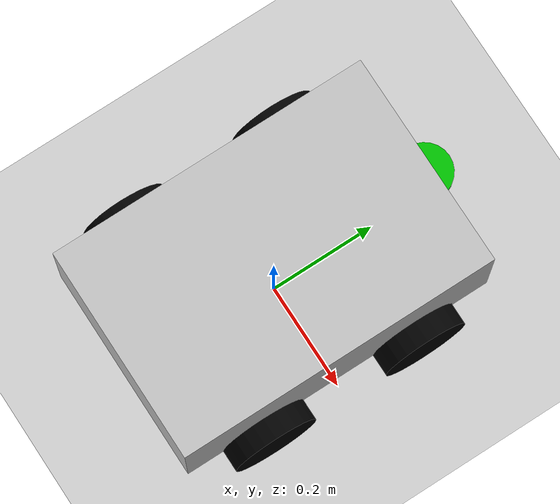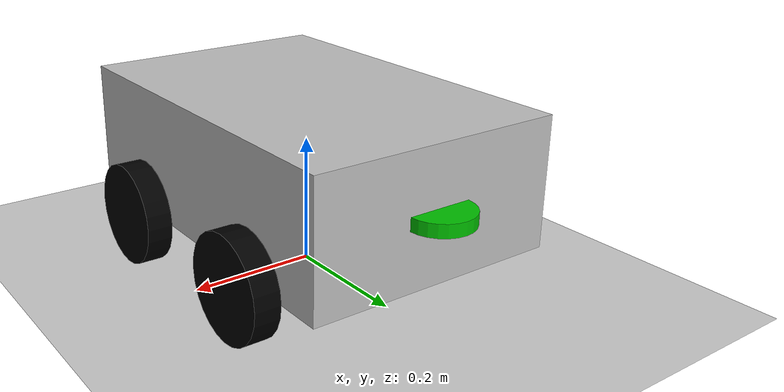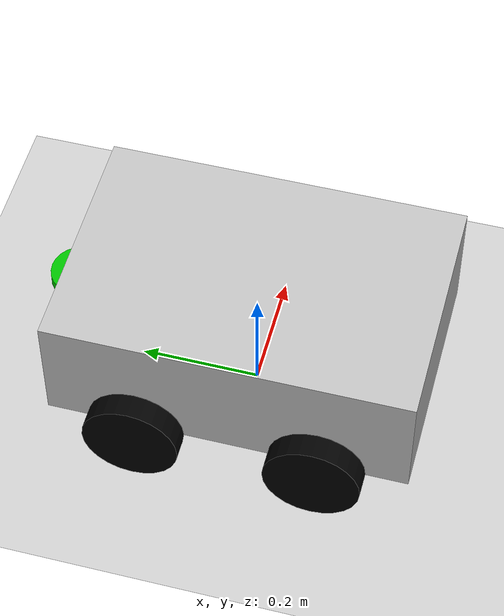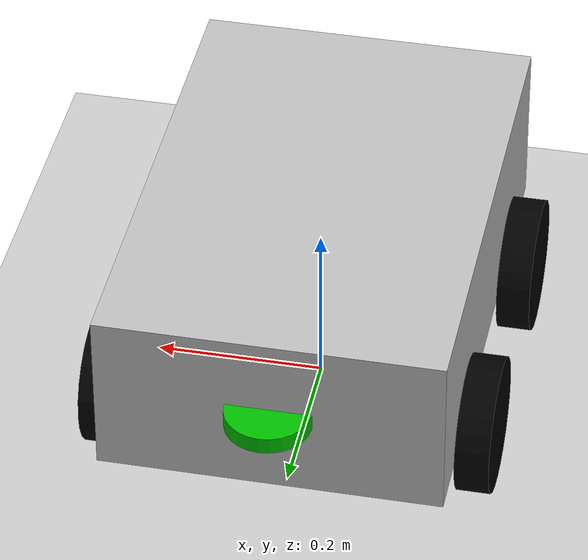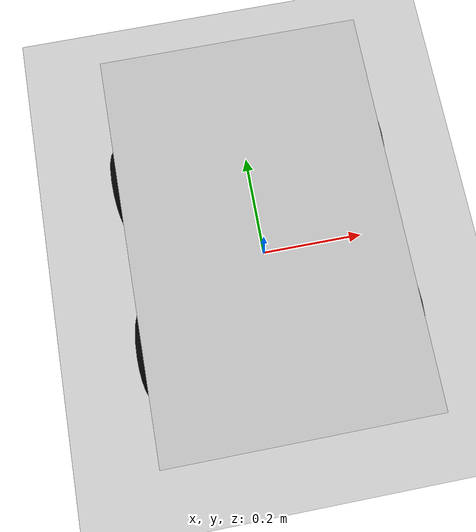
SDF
<sdf version='1.10'>
  <world name='my_world'>
    <physics name='1ms' type='ignored'>
      <max_step_size>0.001</max_step_size>
      <real_time_factor>1</real_time_factor>
      <real_time_update_rate>1000</real_time_update_rate>
    </physics>
    <plugin name='gz::sim::systems::Physics' filename='gz-sim-physics-system'/>
    <plugin name='gz::sim::systems::UserCommands' filename='gz-sim-user-commands-system'/>
    <plugin name='gz::sim::systems::SceneBroadcaster' filename='gz-sim-scene-broadcaster-system'/>
    <plugin name='gz::sim::systems::Physics' filename='gz-sim-physics-system'/>
    <plugin name='gz::sim::systems::UserCommands' filename='gz-sim-user-commands-system'/>
    <plugin name='gz::sim::systems::SceneBroadcaster' filename='gz-sim-scene-broadcaster-system'/>
    <plugin name='gz::sim::systems::Contact' filename='gz-sim-contact-system'/>
    <plugin name='gz::sim::systems::Sensors' filename='gz-sim-sensors-system'>
      <render_engine>ogre2</render_engine>
    </plugin>
    <gravity>0 0 -9.8000000000000007</gravity>
    <magnetic_field>5.5644999999999998e-06 2.2875799999999999e-05 -4.2388400000000002e-05</magnetic_field>
    <atmosphere type='adiabatic'/>
    <scene>
      <ambient>0.400000006 0.400000006 0.400000006 1</ambient>
      <background>0.699999988 0.699999988 0.699999988 1</background>
      <shadows>true</shadows>
    </scene>
    <model name='ground_plane'>
      <static>true</static>
      <link name='link'>
        <collision name='collision'>
          <geometry>
            <plane>
              <normal>0 0 1</normal>
              <size>100 100</size>
            </plane>
          </geometry>
          <surface>
            <friction>
              <ode/>
            </friction>
            <bounce/>
            <contact/>
          </surface>
        </collision>
        <visual name='visual'>
          <geometry>
            <plane>
              <normal>0 0 1</normal>
              <size>100 100</size>
            </plane>
          </geometry>
          <material>
            <ambient>0.800000012 0.800000012 0.800000012 1</ambient>
            <diffuse>0.800000012 0.800000012 0.800000012 1</diffuse>
            <specular>0.800000012 0.800000012 0.800000012 1</specular>
          </material>
        </visual>
        <pose>0 0 0 0 0 0</pose>
        <inertial>
          <pose>0 0 0 0 0 0</pose>
          <mass>1</mass>
          <inertia>
            <ixx>1</ixx>
            <ixy>0</ixy>
            <ixz>0</ixz>
            <iyy>1</iyy>
            <iyz>0</iyz>
            <izz>1</izz>
          </inertia>
        </inertial>
        <enable_wind>false</enable_wind>
      </link>
      <pose>0 0 0 0 0 0</pose>
      <self_collide>false</self_collide>
    </model>
    <model name='my_robot'>
      <link name='base_footprint'>
        <inertial>
          <pose>0 0.011538461538461541 0.17999999999999999 0 0 0</pose>
          <mass>5.2000000000000002</mass>
          <inertia>
            <ixx>0.23410769230769241</ixx>
            <ixy>0</ixy>
            <ixz>0</ixz>
            <iyy>0.10010000000000011</iyy>
            <iyz>0</iyz>
            <izz>0.28425769230769232</izz>
          </inertia>
        </inertial>
        <collision name='base_footprint_fixed_joint_lump__base_link_collision'>
          <pose>0 0 0.17999999999999999 0 0 0</pose>
          <geometry>
            <box>
              <size>0.40000000000000002 0.59999999999999998 0.20000000000000001</size>
            </box>
          </geometry>
          <surface>
            <friction>
              <ode/>
            </friction>
            <bounce/>
            <contact/>
          </surface>
        </collision>
        <collision name='base_footprint_fixed_joint_lump__lidar_collision_1'>
          <pose>0 0.29999999999999999 0.17999999999999999 0 0 0</pose>
          <geometry>
            <cylinder>
              <length>0.02</length>
              <radius>0.050000000000000003</radius>
            </cylinder>
          </geometry>
          <surface>
            <contact>
              <ode/>
            </contact>
            <friction>
              <ode/>
            </friction>
            <bounce/>
          </surface>
        </collision>
        <visual name='base_footprint_fixed_joint_lump__base_link_visual'>
          <pose>0 0 0.17999999999999999 0 0 0</pose>
          <geometry>
            <box>
              <size>0.40000000000000002 0.59999999999999998 0.20000000000000001</size>
            </box>
          </geometry>
          <material>
            <diffuse>0.75000006 0.75000006 0.75000006 1</diffuse>
            <ambient>0.75000006 0.75000006 0.75000006 1</ambient>
          </material>
        </visual>
        <visual name='base_footprint_fixed_joint_lump__lidar_visual_1'>
          <pose>0 0.29999999999999999 0.17999999999999999 0 0 0</pose>
          <geometry>
            <cylinder>
              <length>0.02</length>
              <radius>0.050000000000000003</radius>
            </cylinder>
          </geometry>
          <material>
            <diffuse>0 0.75000006 0 1</diffuse>
            <ambient>0 0.75000006 0 1</ambient>
          </material>
        </visual>
        <sensor name='gpu_lidar' type='gpu_lidar'>
          <pose>0 0.29999999999999999 0.17999999999999999 0 0 0</pose>
          <topic>scan</topic>
          <update_rate>10</update_rate>
          <enable_metrics>false</enable_metrics>
          <lidar>
            <scan>
              <horizontal>
                <samples>720</samples>
                <resolution>1</resolution>
                <min_angle>0</min_angle>
                <max_angle>3.1415926000000001</max_angle>
              </horizontal>
              <vertical>
                <samples>1</samples>
                <min_angle>0</min_angle>
                <max_angle>0</max_angle>
                <resolution>1</resolution>
              </vertical>
            </scan>
            <range>
              <min>0.050000000000000003</min>
              <max>5</max>
              <resolution>0.01</resolution>
            </range>
            <noise>
              <type>gaussian</type>
              <mean>0</mean>
              <stddev>0.01</stddev>
            </noise>
            <visibility_mask>4294967295</visibility_mask>
          </lidar>
        </sensor>
        <pose>0 0 0 0 0 0</pose>
        <enable_wind>false</enable_wind>
      </link>
      <joint name='base_left_back_joint' type='revolute'>
        <pose>0 0 0 0 0 0</pose>
        <parent>base_footprint</parent>
        <child>left_back_wheel</child>
        <axis>
          <xyz>1 0 0</xyz>
          <limit>
            <lower>-inf</lower>
            <upper>inf</upper>
            <effort>inf</effort>
            <velocity>inf</velocity>
            <stiffness>100000000</stiffness>
            <dissipation>1</dissipation>
          </limit>
          <dynamics>
            <spring_reference>0</spring_reference>
            <spring_stiffness>0</spring_stiffness>
            <damping>0</damping>
            <friction>0</friction>
          </dynamics>
        </axis>
      </joint>
      <link name='left_back_wheel'>
        <pose>-0.22 -0.14999999999999999 0.080000000000000016 1.6503657218961687e-11 -8.5065414447009675e-38 3.7615819226243007e-37</pose>
        <inertial>
          <pose>0 0 0 0 0 0</pose>
          <mass>0.5</mass>
          <inertia>
            <ixx>0.0016000000000000001</ixx>
            <ixy>0</ixy>
            <ixz>0</ixz>
            <iyy>0.00086700000000000004</iyy>
            <iyz>0</iyz>
            <izz>0.00086700000000000004</izz>
          </inertia>
        </inertial>
        <collision name='left_back_wheel_collision'>
          <pose>0 0 0 0 1.5707963267948966 0</pose>
          <geometry>
            <cylinder>
              <length>0.040000000000000001</length>
              <radius>0.080000000000000002</radius>
            </cylinder>
          </geometry>
          <surface>
            <friction>
              <ode/>
            </friction>
            <bounce/>
            <contact/>
          </surface>
        </collision>
        <visual name='left_back_wheel_visual'>
          <pose>0 0 0 0 1.5707963267948966 0</pose>
          <geometry>
            <cylinder>
              <length>0.040000000000000001</length>
              <radius>0.080000000000000002</radius>
            </cylinder>
          </geometry>
          <material>
            <diffuse>0 0 0 1</diffuse>
            <ambient>0 0 0 1</ambient>
          </material>
        </visual>
        <enable_wind>false</enable_wind>
      </link>
      <joint name='base_left_front_joint' type='revolute'>
        <pose>0 0 0 0 0 0</pose>
        <parent>base_footprint</parent>
        <child>left_front_wheel</child>
        <axis>
          <xyz>1 0 0</xyz>
          <limit>
            <lower>-inf</lower>
            <upper>inf</upper>
            <effort>inf</effort>
            <velocity>inf</velocity>
            <stiffness>100000000</stiffness>
            <dissipation>1</dissipation>
          </limit>
          <dynamics>
            <spring_reference>0</spring_reference>
            <spring_stiffness>0</spring_stiffness>
            <damping>0</damping>
            <friction>0</friction>
          </dynamics>
        </axis>
      </joint>
      <link name='left_front_wheel'>
        <pose>0.22 -0.14999999999999999 0.080000000000000016 1.6503657226121374e-11 -8.5057959187828509e-38 3.7615819226243011e-37</pose>
        <inertial>
          <pose>0 0 0 0 0 0</pose>
          <mass>0.5</mass>
          <inertia>
            <ixx>0.0016000000000000001</ixx>
            <ixy>0</ixy>
            <ixz>0</ixz>
            <iyy>0.00086700000000000004</iyy>
            <iyz>0</iyz>
            <izz>0.00086700000000000004</izz>
          </inertia>
        </inertial>
        <collision name='left_front_wheel_collision'>
          <pose>0 0 0 0 1.5707963267948966 0</pose>
          <geometry>
            <cylinder>
              <length>0.040000000000000001</length>
              <radius>0.080000000000000002</radius>
            </cylinder>
          </geometry>
          <surface>
            <friction>
              <ode/>
            </friction>
            <bounce/>
            <contact/>
          </surface>
        </collision>
        <visual name='left_front_wheel_visual'>
          <pose>0 0 0 0 1.5707963267948966 0</pose>
          <geometry>
            <cylinder>
              <length>0.040000000000000001</length>
              <radius>0.080000000000000002</radius>
            </cylinder>
          </geometry>
          <material>
            <diffuse>0 0 0 1</diffuse>
            <ambient>0 0 0 1</ambient>
          </material>
        </visual>
        <enable_wind>false</enable_wind>
      </link>
      <joint name='base_right_back_joint' type='revolute'>
        <pose>0 0 0 0 0 0</pose>
        <parent>base_footprint</parent>
        <child>right_back_wheel</child>
        <axis>
          <xyz>1 0 0</xyz>
          <limit>
            <lower>-inf</lower>
            <upper>inf</upper>
            <effort>inf</effort>
            <velocity>inf</velocity>
            <stiffness>100000000</stiffness>
            <dissipation>1</dissipation>
          </limit>
          <dynamics>
            <spring_reference>0</spring_reference>
            <spring_stiffness>0</spring_stiffness>
            <damping>0</damping>
            <friction>0</friction>
          </dynamics>
        </axis>
      </joint>
      <link name='right_back_wheel'>
        <pose>-0.22 0.14999999999999999 0.079999999999999988 1.6503657223021612e-11 -8.5061186917021215e-38 3.7615819226243011e-37</pose>
        <inertial>
          <pose>0 0 0 0 0 0</pose>
          <mass>0.5</mass>
          <inertia>
            <ixx>0.0016000000000000001</ixx>
            <ixy>0</ixy>
            <ixz>0</ixz>
            <iyy>0.00086700000000000004</iyy>
            <iyz>0</iyz>
            <izz>0.00086700000000000004</izz>
          </inertia>
        </inertial>
        <collision name='right_back_wheel_collision'>
          <pose>0 0 0 0 1.5707963267948966 0</pose>
          <geometry>
            <cylinder>
              <length>0.040000000000000001</length>
              <radius>0.080000000000000002</radius>
            </cylinder>
          </geometry>
          <surface>
            <friction>
              <ode/>
            </friction>
            <bounce/>
            <contact/>
          </surface>
        </collision>
        <visual name='right_back_wheel_visual'>
          <pose>0 0 0 0 1.5707963267948966 0</pose>
          <geometry>
            <cylinder>
              <length>0.040000000000000001</length>
              <radius>0.080000000000000002</radius>
            </cylinder>
          </geometry>
          <material>
            <diffuse>0 0 0 1</diffuse>
            <ambient>0 0 0 1</ambient>
          </material>
        </visual>
        <enable_wind>false</enable_wind>
      </link>
      <joint name='base_right_front_joint' type='revolute'>
        <pose>0 0 0 0 0 0</pose>
        <parent>base_footprint</parent>
        <child>right_front_wheel</child>
        <axis>
          <xyz>1 0 0</xyz>
          <limit>
            <lower>-inf</lower>
            <upper>inf</upper>
            <effort>inf</effort>
            <velocity>inf</velocity>
            <stiffness>100000000</stiffness>
            <dissipation>1</dissipation>
          </limit>
          <dynamics>
            <spring_reference>0</spring_reference>
            <spring_stiffness>0</spring_stiffness>
            <damping>0</damping>
            <friction>0</friction>
          </dynamics>
        </axis>
      </joint>
      <link name='right_front_wheel'>
        <pose>0.22 0.14999999999999999 0.079999999999999988 1.6503657232298303e-11 -8.5051527258325394e-38 3.7615819226243015e-37</pose>
        <inertial>
          <pose>0 0 0 0 0 0</pose>
          <mass>0.5</mass>
          <inertia>
            <ixx>0.0016000000000000001</ixx>
            <ixy>0</ixy>
            <ixz>0</ixz>
            <iyy>0.00086700000000000004</iyy>
            <iyz>0</iyz>
            <izz>0.00086700000000000004</izz>
          </inertia>
        </inertial>
        <collision name='right_front_wheel_collision'>
          <pose>0 0 0 0 1.5707963267948966 0</pose>
          <geometry>
            <cylinder>
              <length>0.040000000000000001</length>
              <radius>0.080000000000000002</radius>
            </cylinder>
          </geometry>
          <surface>
            <friction>
              <ode/>
            </friction>
            <bounce/>
            <contact/>
          </surface>
        </collision>
        <visual name='right_front_wheel_visual'>
          <pose>0 0 0 0 1.5707963267948966 0</pose>
          <geometry>
            <cylinder>
              <length>0.040000000000000001</length>
              <radius>0.080000000000000002</radius>
            </cylinder>
          </geometry>
          <material>
            <diffuse>0 0 0 1</diffuse>
            <ambient>0 0 0 1</ambient>
          </material>
        </visual>
        <enable_wind>false</enable_wind>
      </link>
      <plugin name='gz::sim::systems::DiffDrive' filename='gz-sim-diff-drive-system'>
        <topic>/cmd_vel</topic>
        <left_joint>base_left_back_joint</left_joint>
        <left_joint>base_left_front_joint</left_joint>
        <right_joint>base_right_back_joint</right_joint>
        <right_joint>base_right_front_joint</right_joint>
        <wheel_separation>0.4</wheel_separation>
        <wheel_radius>0.08</wheel_radius>
        <max_velocity>3.0</max_velocity>
        <max_linear_acceleration>1</max_linear_acceleration>
        <min_linear_acceleration>-1</min_linear_acceleration>
        <max_angular_acceleration>2</max_angular_acceleration>
        <min_angular_acceleration>-2</min_angular_acceleration>
        <max_linear_velocity>1.5</max_linear_velocity>
        <min_linear_velocity>-1.5</min_linear_velocity>
        <max_angular_velocity>1</max_angular_velocity>
        <min_angular_velocity>-1</min_angular_velocity>
        <odom_topic>odom</odom_topic>
        <tf_topic>tf</tf_topic>
        <frame_id>odom</frame_id>
        <child_frame_id>base_footprint</child_frame_id>
        <odom_publish_frequency>30</odom_publish_frequency>
      </plugin>
      <plugin name='gz::sim::systems::JointStatePublisher' filename='gz-sim-joint-state-publisher-system'>
        <topic>joint_states</topic>
        <joint_name>base_left_back_joint</joint_name>
        <joint_name>base_left_front_joint</joint_name>
        <joint_name>base_right_back_joint</joint_name>
        <joint_name>base_right_front_joint</joint_name>
      </plugin>
      <frame name='base_lidar_joint' attached_to='base_link'>
        <pose>0 0.29999999999999999 0.10000000000000001 0 0 0</pose>
      </frame>
      <frame name='lidar' attached_to='base_lidar_joint'>
        <pose>0 0 0 0 0 0</pose>
      </frame>
      <frame name='base_joint' attached_to='base_footprint'>
        <pose>0 0 0.080000000000000002 0 0 0</pose>
      </frame>
      <frame name='base_link' attached_to='base_joint'>
        <pose>0 0 0 0 0 0</pose>
      </frame>
      <pose>-3.777198860389781e-22 -2.6536347324676078e-12 -7.698866543586086e-11 -1.8503230053160127e-11 3.298460953749459e-21 -2.0825654599933989e-21</pose>
      <static>false</static>
      <self_collide>false</self_collide>
    </model>
    <light name='sun' type='directional'>
      <pose>0 0 10 0 0 0</pose>
      <cast_shadows>false</cast_shadows>
      <intensity>1</intensity>
      <direction>-0.5 0.10000000000000001 -0.90000000000000002</direction>
      <diffuse>0.800000012 0.800000012 0.800000012 1</diffuse>
      <specular>0.200000003 0.200000003 0.200000003 1</specular>
      <attenuation>
        <range>200</range>
        <linear>0.01</linear>
        <constant>0.5</constant>
        <quadratic>0.001</quadratic>
      </attenuation>
      <spot>
        <inner_angle>0</inner_angle>
        <outer_angle>0</outer_angle>
        <falloff>0</falloff>
      </spot>
    </light>
  </world>
</sdf>
